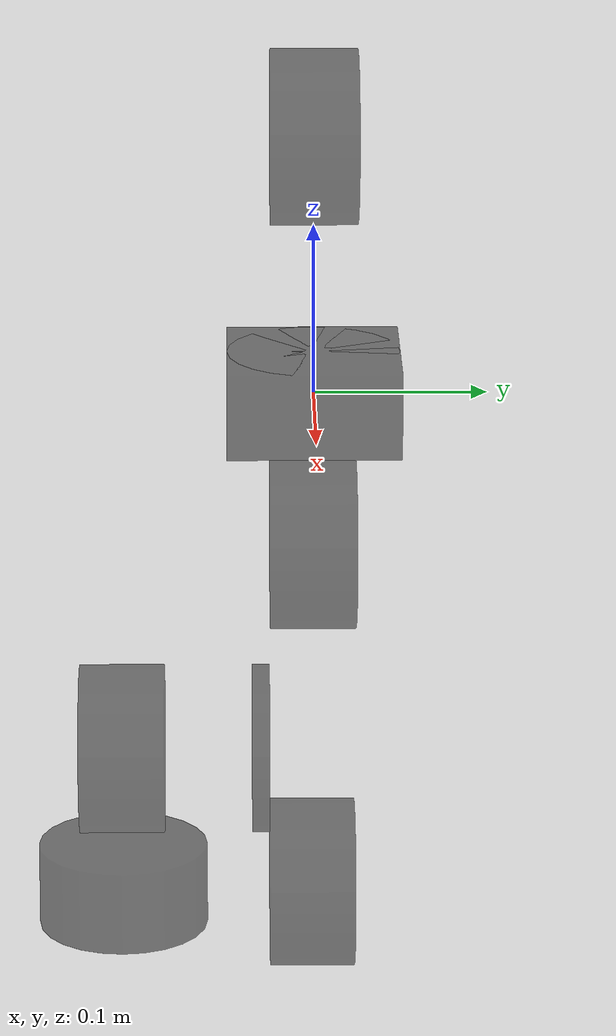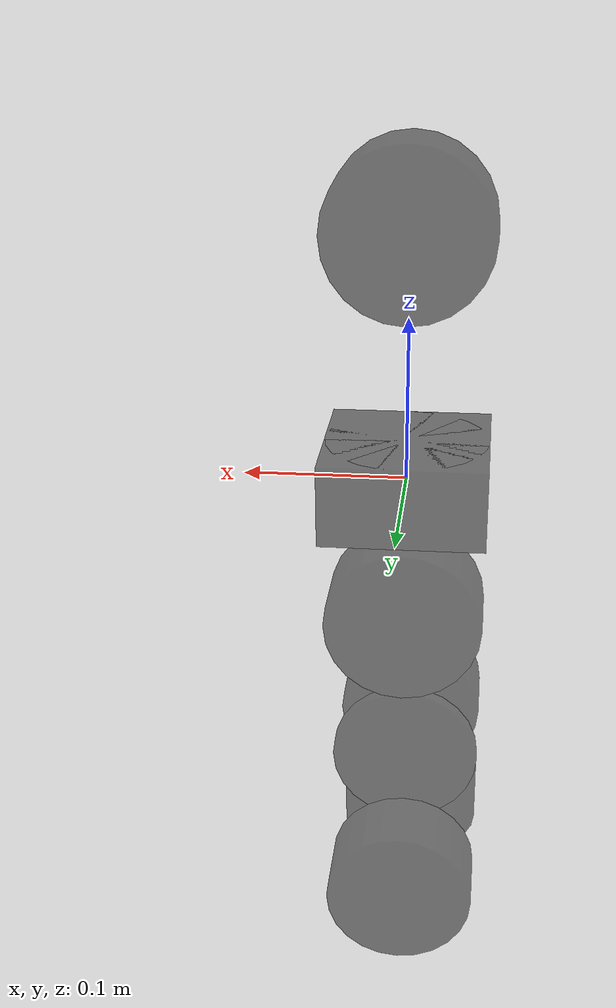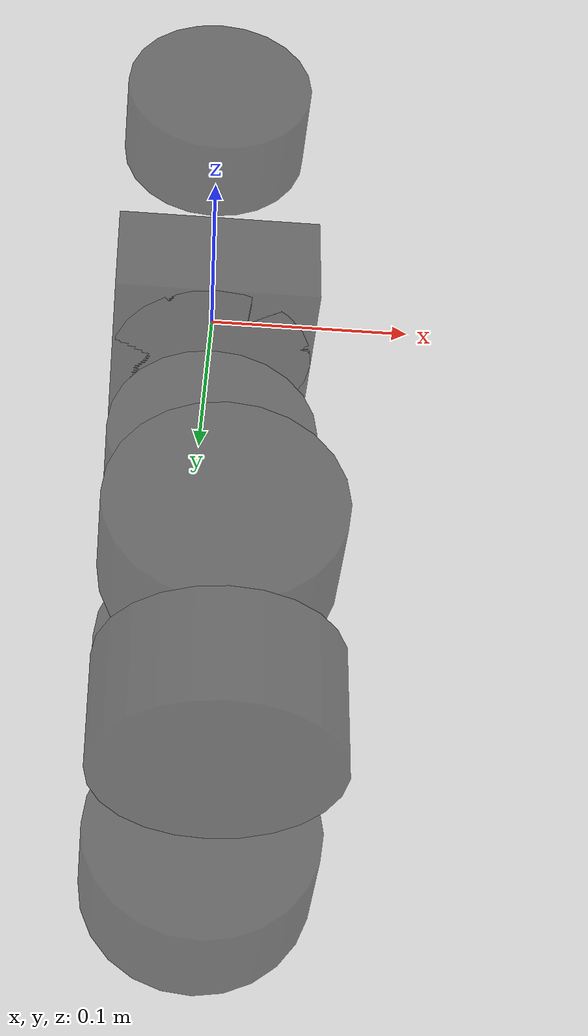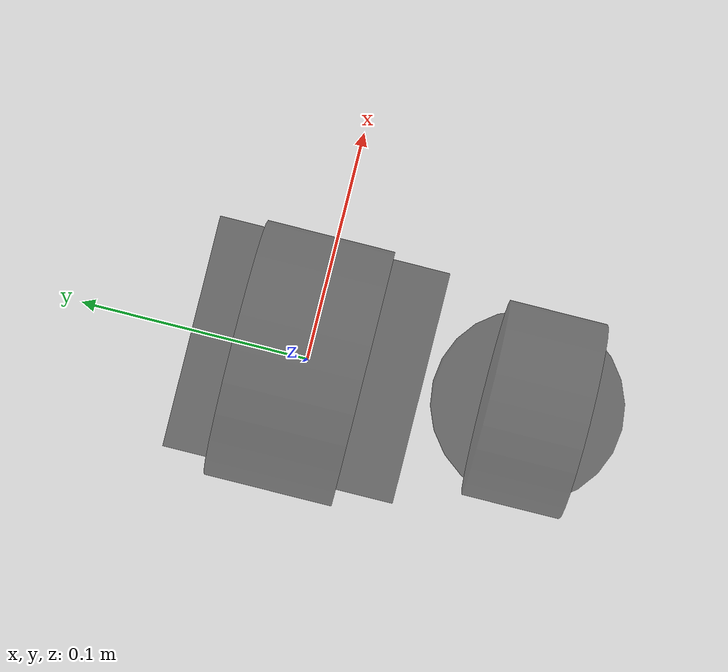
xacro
<?xml version="1.0" ?>
<robot name="robot" xmlns:xacro="http://www.ros.org/wiki/xacro">

  <material name="white">
    <color rgba="1 1 1 1"/>
  </material>
  <material name="orange">
    <color rgba="1 0.3 0.1 1"/>
  </material>
  <material name="blue">
    <color rgba="0.2 0.2 1 1"/>
  </material>
  <material name="black">
    <color rgba="0 0 0 0.5"/>
  </material>

  <!-- Base link -->
  <link name="base_link">
    <visual>
      <geometry>
        <box size="0.1 0.1 0.05"/>
      </geometry>
      <material name="black"/>
    </visual>
  </link>

  <!-- Joint 1 -->
  <joint name="joint1" type="continuous">
    <axis rpy="0 0 0" xyz="0 0 1"/>
    <parent link="base_link"/>
    <child link="link1"/>
    <origin rpy="0 0 0" xyz="0 0 0"/>
  </joint>

  <!-- Joint 2 -->
  <joint name="joint2" type="continuous">
    <axis rpy="0 0 0" xyz="0 0 1"/>
    <parent link="link1"/>
    <child link="link2"/>
    <origin rpy="1.57075 0 0" xyz="0 0 0.1519"/>
  </joint>

  <!-- Joint 3 -->
  <joint name="joint3" type="continuous">
    <axis rpy="0 0 0" xyz="0 0 1"/>
    <parent link="link2"/>
    <child link="link3"/>
    <origin rpy="0 0 1.57075" xyz="0 -0.24365 0"/>
  </joint>

  <!-- Joint 4 -->
  <joint name="joint4" type="continuous">
    <axis rpy="0 0 0" xyz="0 0 1"/>
    <parent link="link3"/>
    <child link="link4"/>
    <origin rpy="0 0 0" xyz="-0.21325 0 0"/>
  </joint>

  <!-- Joint 5 -->
  <joint name="joint5" type="continuous">
    <axis rpy="0 0 0" xyz="0 0 1"/>
    <parent link="link4"/>
    <child link="link5"/>
    <origin rpy="1.57075 0 1.57075" xyz="0 0 0.11235"/>
  </joint>

  <!-- Joint 6 -->
  <joint name="joint6" type="continuous">
    <axis rpy="0 0 0" xyz="0 0 1"/>
    <parent link="link5"/>
    <child link="link6"/>
    <origin rpy="1.57075 0 0" xyz="0 0 0.08535"/>
  </joint>

  <!-- Joint 7 -->
  <joint name="joint7" type="fixed">
    <axis rpy="0 0 0" xyz="0 0 1"/>
    <parent link="link6"/>
    <child link="end"/>
    <origin rpy="0 0 0" xyz="0 0 0.0819"/>
  </joint>

  <!-- Link 1 -->
  <link name="link1">
    <visual>
      <geometry>
        <cylinder length="0.05" radius="0.05"/>
      </geometry>
      <material name="black"/>
    </visual>
  </link>

  <!-- Link 2 -->
  <link name="link2">
    <visual>
      <origin rpy="0 0 1.57075" xyz="0 0 0"/>
      <geometry>
        <cylinder length="0.05" radius="0.05"/>
      </geometry>
      <material name="black"/>
    </visual>
  </link>

  <!-- Link 3 -->
  <link name="link3">
    <visual>
      <origin rpy="0 0 1.57075" xyz="0 0 0"/>
      <geometry>
        <cylinder length="0.05" radius="0.05"/>
      </geometry>
      <material name="black"/>
    </visual>
  </link>

  <!-- Link 4 -->
  <link name="link4">
    <visual>
      <origin rpy="0 0 1.57075" xyz="0 0 0"/>
      <geometry>
        <cylinder length="0.05" radius="0.05"/>
      </geometry>
      <material name="black"/>
    </visual>
  </link>

  <!-- Link 5 -->
  <link name="link5">
    <visual>
      <origin rpy="0 0 1.57075" xyz="0 0 0"/>
      <geometry>
        <cylinder length="0.05" radius="0.05"/>
      </geometry>
      <material name="black"/>
    </visual>
  </link>

  <!-- Link 6 -->
  <link name="link6">
    <visual>
      <origin rpy="0 0 1.57075" xyz="0 0 0"/>
      <geometry>
        <cylinder length="0.05" radius="0.05"/>
      </geometry>
      <material name="black"/>
    </visual>
  </link>

  <!-- End Effector -->
  <link name="end">
    <visual>
      <origin rpy="0 0 1.57075" xyz="0 0 0"/>
      <geometry>
        <cylinder length="0.01" radius="0.05"/>
      </geometry>
      <material name="black"/>
    </visual>
  </link>

</robot>
